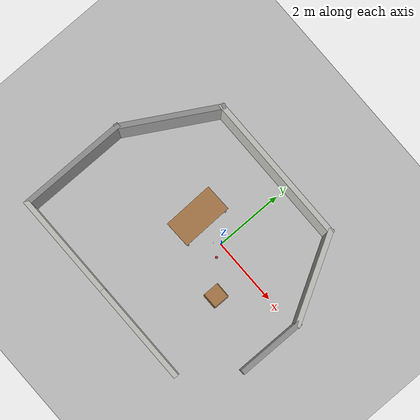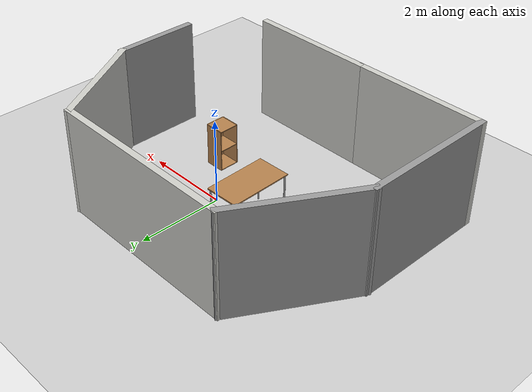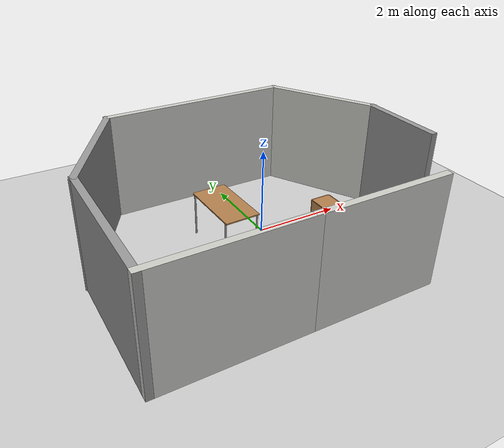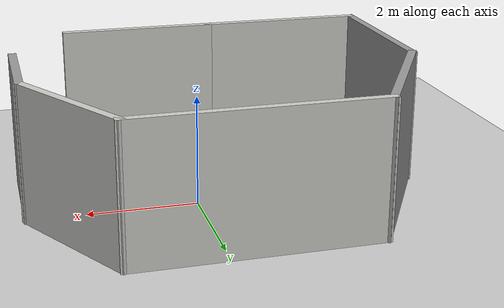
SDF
<sdf version="1.7">
 <world name="default">
  <light name="sun" type="directional">
   <pose>0 0 10 0 -0 0</pose>
   <diffuse>0.8 0.8 0.8 1</diffuse>
   <specular>0.2 0.2 0.2 1</specular>
   <attenuation>
    <range>1000</range>
    <constant>0.9</constant>
    <linear>0.01</linear>
    <quadratic>0.001</quadratic>
   </attenuation>
   <direction>-0.5 0.1 -0.9</direction>
   <spot><inner_angle>0</inner_angle><outer_angle>0</outer_angle><falloff>0</falloff></spot>
  </light>
  <model name="ground_plane">
   <static>1</static>
   <link name="link">
    <collision name="collision">
     <geometry><plane><normal>0 0 1</normal><size>100 100</size></plane></geometry>
     <surface>
      <contact><collide_bitmask>65535</collide_bitmask></contact>
      <friction><ode><mu>100</mu><mu2>50</mu2></ode></friction>
     </surface>
    </collision>
    <visual name="visual">
     <cast_shadows>0</cast_shadows>
     <geometry><plane><normal>0 0 1</normal><size>100 100</size></plane></geometry>
     <material>
      <script><uri>file://media/materials/scripts/gazebo.material</uri><name>Gazebo/Grey</name></script>
     </material>
    </visual>
   </link>
  </model>
  <gravity>0 0 -9.8</gravity>
  <magnetic_field>6e-06 2.3e-05 -4.2e-05</magnetic_field>
  <atmosphere type="adiabatic"/>
  <physics type="ode">
   <max_step_size>0.001</max_step_size>
   <real_time_factor>1</real_time_factor>
   <real_time_update_rate>1000</real_time_update_rate>
  </physics>
  <scene><ambient>0.4 0.4 0.4 1</ambient><background>0.7 0.7 0.7 1</background><shadows>1</shadows></scene>
  <spherical_coordinates>
   <surface_model>EARTH_WGS84</surface_model>
   <latitude_deg>0</latitude_deg>
   <longitude_deg>0</longitude_deg>
   <elevation>0</elevation>
   <heading_deg>0</heading_deg>
  </spherical_coordinates>
  <model name="kuka_world">
   <pose>-0.5425 -0.462188 0 0 -0 0</pose>
   <link name="Wall_0">
    <collision name="Wall_0_Collision">
     <geometry><box><size>3.25 0.15 2.5</size></box></geometry>
     <pose>0 0 1.25 0 -0 0</pose>
    </collision>
    <visual name="Wall_0_Visual">
     <pose>0 0 1.25 0 -0 0</pose>
     <geometry><box><size>3.25 0.15 2.5</size></box></geometry>
     <material>
      <script><uri>file://media/materials/scripts/gazebo.material</uri><name>Gazebo/CeilingTiled</name></script>
      <ambient>1 1 1 1</ambient>
     </material>
     <meta><layer>0</layer></meta>
    </visual>
    <pose>-1.9875 -2.79781 0 0 -0 3.14159</pose>
   </link>
   <link name="Wall_1">
    <collision name="Wall_1_Collision">
     <geometry><box><size>3.25 0.15 2.5</size></box></geometry>
     <pose>0 0 1.25 0 -0 0</pose>
    </collision>
    <visual name="Wall_1_Visual">
     <pose>0 0 1.25 0 -0 0</pose>
     <geometry><box><size>3.25 0.15 2.5</size></box></geometry>
     <material>
      <script><uri>file://media/materials/scripts/gazebo.material</uri><name>Gazebo/Grey</name></script>
      <ambient>1 1 1 1</ambient>
     </material>
     <meta><layer>0</layer></meta>
    </visual>
    <pose>-3.5375 -1.24781 0 0 -0 1.5708</pose>
   </link>
   <link name="Wall_10">
    <collision name="Wall_10_Collision">
     <geometry><box><size>2 0.15 2.5</size></box></geometry>
     <pose>0 0 1.25 0 -0 0</pose>
    </collision>
    <visual name="Wall_10_Visual">
     <pose>0 0 1.25 0 -0 0</pose>
     <geometry><box><size>2 0.15 2.5</size></box></geometry>
     <material>
      <script><uri>file://media/materials/scripts/gazebo.material</uri><name>Gazebo/Grey</name></script>
      <ambient>1 1 1 1</ambient>
     </material>
     <meta><layer>0</layer></meta>
    </visual>
    <pose>3.5375 -0.406306 0 0 -0 -1.5708</pose>
   </link>
   <link name="Wall_12">
    <collision name="Wall_12_Collision">
     <geometry><box><size>3 0.15 2.5</size></box></geometry>
     <pose>0 0 1.25 0 -0 0</pose>
    </collision>
    <visual name="Wall_12_Visual">
     <pose>0 0 1.25 0 -0 0</pose>
     <geometry><box><size>3 0.15 2.5</size></box></geometry>
     <material>
      <script><uri>file://media/materials/scripts/gazebo.material</uri><name>Gazebo/CeilingTiled</name></script>
      <ambient>1 1 1 1</ambient>
     </material>
     <meta><layer>0</layer></meta>
    </visual>
    <pose>0.9875 -2.79781 0 0 -0 0</pose>
   </link>
   <link name="Wall_4">
    <collision name="Wall_4_Collision">
     <geometry><box><size>3 0.15 2.5</size></box></geometry>
     <pose>0 0 1.25 0 -0 0</pose>
    </collision>
    <visual name="Wall_4_Visual">
     <pose>0 0 1.25 0 -0 0</pose>
     <geometry><box><size>3 0.15 2.5</size></box></geometry>
     <material>
      <script><uri>file://media/materials/scripts/gazebo.material</uri><name>Gazebo/Grey</name></script>
      <ambient>1 1 1 1</ambient>
     </material>
     <meta><layer>0</layer></meta>
    </visual>
    <pose>-2.825 1.53627 0 0 -0 1.0472</pose>
   </link>
   <link name="Wall_5">
    <collision name="Wall_5_Collision">
     <geometry><box><size>4.5 0.15 2.5</size></box></geometry>
     <pose>0 0 1.25 0 -0 0</pose>
    </collision>
    <visual name="Wall_5_Visual">
     <pose>0 0 1.25 0 -0 0</pose>
     <geometry><box><size>4.5 0.15 2.5</size></box></geometry>
     <material>
      <script><uri>file://media/materials/scripts/gazebo.material</uri><name>Gazebo/CeilingTiled</name></script>
      <ambient>1 1 1 1</ambient>
     </material>
     <meta><layer>0</layer></meta>
    </visual>
    <pose>0.0625 2.77036 0 0 -0 0</pose>
   </link>
   <link name="Wall_6">
    <collision name="Wall_6_Collision">
     <geometry><box><size>2.75 0.15 2.5</size></box></geometry>
     <pose>0 0 1.25 0 -0 0</pose>
    </collision>
    <visual name="Wall_6_Visual">
     <pose>0 0 1.25 0 -0 0</pose>
     <geometry><box><size>2.75 0.15 2.5</size></box></geometry>
     <material>
      <script><uri>file://media/materials/scripts/gazebo.material</uri><name>Gazebo/CeilingTiled</name></script>
      <ambient>1 1 1 1</ambient>
     </material>
     <meta><layer>0</layer></meta>
    </visual>
    <pose>2.8875 1.64453 0 0 -0 -1.0472</pose>
   </link>
   <static>1</static>
  </model>
  <model name="cabinet">
   <static>1</static>
   <link name="cabinet_bottom_plate">
    <inertial>
     <pose>0 0 -1 0 -0 0</pose>
     <inertia><ixx>2.05</ixx><ixy>0</ixy><ixz>0</ixz><iyy>2.05</iyy><iyz>0</iyz><izz>2.05</izz></inertia>
     <mass>25</mass>
    </inertial>
    <collision name="cabinet_bottom_plate_geom">
     <pose>0 0 0.01 0 -0 0</pose>
     <geometry><box><size>0.45 0.45 0.02</size></box></geometry>
    </collision>
    <visual name="cabinet_bottom_plate_geom_visual">
     <pose>0 0 0.01 0 -0 0</pose>
     <geometry><box><size>0.45 0.45 0.02</size></box></geometry>
     <material>
      <script><uri>file://media/materials/scripts/gazebo.material</uri><name>Gazebo/Wood</name></script>
     </material>
    </visual>
    <collision name="cabinet_bottom_plate_geom_cabinet_back_plate">
     <pose>0.235 0 0.51 0 -0 0</pose>
     <geometry><box><size>0.02 0.45 1.02</size></box></geometry>
    </collision>
    <visual name="cabinet_bottom_plate_geom_cabinet_back_plate_visual">
     <pose>0.235 0 0.51 0 -0 0</pose>
     <geometry><box><size>0.02 0.45 1.02</size></box></geometry>
     <material>
      <script><uri>file://media/materials/scripts/gazebo.material</uri><name>Gazebo/Wood</name></script>
     </material>
    </visual>
    <collision name="cabinet_bottom_plate_geom_cabinet_left_plate">
     <pose>0 0.235 0.51 0 -0 0</pose>
     <geometry><box><size>0.45 0.02 1.02</size></box></geometry>
    </collision>
    <visual name="cabinet_bottom_plate_geom_cabinet_left_plate_visual">
     <pose>0 0.235 0.51 0 -0 0</pose>
     <geometry><box><size>0.45 0.02 1.02</size></box></geometry>
     <material>
      <script><uri>file://media/materials/scripts/gazebo.material</uri><name>Gazebo/Wood</name></script>
     </material>
    </visual>
    <collision name="cabinet_bottom_plate_geom_cabinet_middle_plate">
     <pose>0 0 0.51 0 -0 0</pose>
     <geometry><box><size>0.45 0.45 0.02</size></box></geometry>
    </collision>
    <visual name="cabinet_bottom_plate_geom_cabinet_middle_plate_visual">
     <pose>0 0 0.51 0 -0 0</pose>
     <geometry><box><size>0.45 0.45 0.02</size></box></geometry>
     <material>
      <script><uri>file://media/materials/scripts/gazebo.material</uri><name>Gazebo/Wood</name></script>
     </material>
    </visual>
    <collision name="cabinet_bottom_plate_geom_cabinet_right_plate">
     <pose>0 -0.235 0.51 0 -0 0</pose>
     <geometry><box><size>0.45 0.02 1.02</size></box></geometry>
    </collision>
    <visual name="cabinet_bottom_plate_geom_cabinet_right_plate_visual">
     <pose>0 -0.235 0.51 0 -0 0</pose>
     <geometry><box><size>0.45 0.02 1.02</size></box></geometry>
     <material>
      <script><uri>file://media/materials/scripts/gazebo.material</uri><name>Gazebo/Wood</name></script>
     </material>
    </visual>
    <collision name="cabinet_bottom_plate_geom_cabinet_top_plate">
     <pose>0 0 1.01 0 -0 0</pose>
     <geometry><box><size>0.45 0.45 0.02</size></box></geometry>
    </collision>
    <visual name="cabinet_bottom_plate_geom_cabinet_top_plate_visual">
     <pose>0 0 1.01 0 -0 0</pose>
     <geometry><box><size>0.45 0.45 0.02</size></box></geometry>
     <material>
      <script><uri>file://media/materials/scripts/gazebo.material</uri><name>Gazebo/Wood</name></script>
     </material>
    </visual>
   </link>
   <pose>0.984109 -1.04509 0 0 -0 0</pose>
  </model>
  <model name="cricket_ball">
   <link name="link">
    <pose>0 0 0.0375 0 -0 0</pose>
    <inertial>
     <mass>0.1467</mass>
     <inertia>
      <ixx>8.25187e-05</ixx>
      <ixy>0</ixy>
      <ixz>0</ixz>
      <iyy>8.25187e-05</iyy>
      <iyz>0</iyz>
      <izz>8.25187e-05</izz>
     </inertia>
    </inertial>
    <collision name="collision">
     <geometry><sphere><radius>0.0375</radius></sphere></geometry>
     <surface>
      <contact>
       <poissons_ratio>0.347</poissons_ratio>
       <elastic_modulus>8.8e+09</elastic_modulus>
       <ode><kp>100000</kp><kd>100</kd><max_vel>100</max_vel><min_depth>0.001</min_depth></ode>
      </contact>
      <friction>
       <torsional>
        <coefficient>1</coefficient>
        <use_patch_radius>0</use_patch_radius>
        <surface_radius>0.01</surface_radius>
       </torsional>
      </friction>
     </surface>
    </collision>
    <visual name="visual">
     <geometry><sphere><radius>0.0375</radius></sphere></geometry>
     <material>
      <script><uri>file://media/materials/scripts/gazebo.material</uri><name>Gazebo/Red</name></script>
     </material>
    </visual>
    <velocity_decay><linear>0</linear><angular>0.005</angular></velocity_decay>
   </link>
   <pose>0.194226 -0.331065 0 0 -0 0</pose>
  </model>
  <model name="marble_1_5cm">
   <link name="link">
    <pose>0 0 0.0075 0 -0 0</pose>
    <inertial>
     <mass>0.0062</mass>
     <inertia>
      <ixx>1.395e-07</ixx>
      <ixy>0</ixy>
      <ixz>0</ixz>
      <iyy>1.395e-07</iyy>
      <iyz>0</iyz>
      <izz>1.395e-07</izz>
     </inertia>
    </inertial>
    <collision name="collision">
     <geometry><sphere><radius>0.0075</radius></sphere></geometry>
     <surface>
      <contact>
       <poissons_ratio>0.22</poissons_ratio>
       <elastic_modulus>5.1e+10</elastic_modulus>
       <ode><kp>100000</kp><kd>100</kd><max_vel>100</max_vel><min_depth>0.001</min_depth></ode>
      </contact>
      <friction>
       <torsional>
        <coefficient>1</coefficient>
        <use_patch_radius>0</use_patch_radius>
        <surface_radius>0.01</surface_radius>
       </torsional>
      </friction>
     </surface>
    </collision>
    <visual name="visual">
     <geometry><sphere><radius>0.0075</radius></sphere></geometry>
     <material>
      <script><uri>file://media/materials/scripts/gazebo.material</uri><name>Gazebo/Blue</name></script>
     </material>
    </visual>
    <velocity_decay><linear>0</linear><angular>0.005</angular></velocity_decay>
   </link>
   <pose>-0.16212 -0.141562 0 0 -0 0</pose>
  </model>
  <model name="table">
   <static>1</static>
   <link name="link">
    <collision name="surface">
     <pose>0 0 1 0 -0 0</pose>
     <geometry><box><size>1.5 0.8 0.03</size></box></geometry>
     <surface><friction><ode><mu>0.6</mu><mu2>0.6</mu2></ode></friction></surface>
    </collision>
    <visual name="visual1">
     <pose>0 0 1 0 -0 0</pose>
     <geometry><box><size>1.5 0.8 0.03</size></box></geometry>
     <material>
      <script><uri>file://media/materials/scripts/gazebo.material</uri><name>Gazebo/Wood</name></script>
     </material>
    </visual>
    <collision name="front_left_leg">
     <pose>0.68 0.38 0.5 0 -0 0</pose>
     <geometry><cylinder><radius>0.02</radius><length>1</length></cylinder></geometry>
    </collision>
    <visual name="front_left_leg">
     <pose>0.68 0.38 0.5 0 -0 0</pose>
     <geometry><cylinder><radius>0.02</radius><length>1</length></cylinder></geometry>
     <material>
      <script><uri>file://media/materials/scripts/gazebo.material</uri><name>Gazebo/Grey</name></script>
     </material>
    </visual>
    <collision name="front_right_leg">
     <pose>0.68 -0.38 0.5 0 -0 0</pose>
     <geometry><cylinder><radius>0.02</radius><length>1</length></cylinder></geometry>
    </collision>
    <visual name="front_right_leg">
     <pose>0.68 -0.38 0.5 0 -0 0</pose>
     <geometry><cylinder><radius>0.02</radius><length>1</length></cylinder></geometry>
     <material>
      <script><uri>file://media/materials/scripts/gazebo.material</uri><name>Gazebo/Grey</name></script>
     </material>
    </visual>
    <collision name="back_right_leg">
     <pose>-0.68 -0.38 0.5 0 -0 0</pose>
     <geometry><cylinder><radius>0.02</radius><length>1</length></cylinder></geometry>
    </collision>
    <visual name="back_right_leg">
     <pose>-0.68 -0.38 0.5 0 -0 0</pose>
     <geometry><cylinder><radius>0.02</radius><length>1</length></cylinder></geometry>
     <material>
      <script><uri>file://media/materials/scripts/gazebo.material</uri><name>Gazebo/Grey</name></script>
     </material>
    </visual>
    <collision name="back_left_leg">
     <pose>-0.68 0.38 0.5 0 -0 0</pose>
     <geometry><cylinder><radius>0.02</radius><length>1</length></cylinder></geometry>
    </collision>
    <visual name="back_left_leg">
     <pose>-0.68 0.38 0.5 0 -0 0</pose>
     <geometry><cylinder><radius>0.02</radius><length>1</length></cylinder></geometry>
     <material>
      <script><uri>file://media/materials/scripts/gazebo.material</uri><name>Gazebo/Grey</name></script>
     </material>
    </visual>
   </link>
   <pose>-0.955766 -0.026378 0 0 0 -1.54534</pose>
  </model>
 </world>
</sdf>
